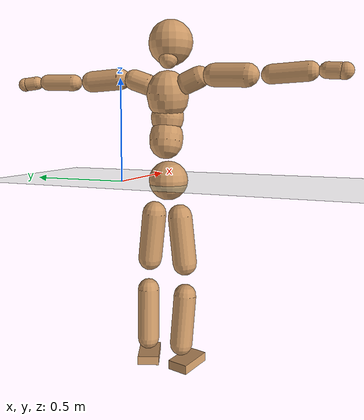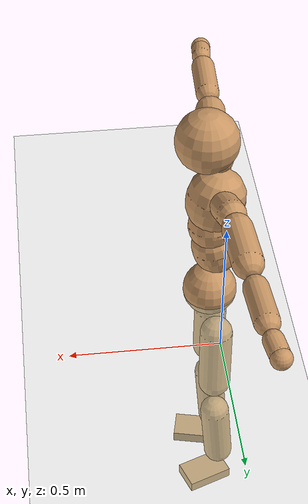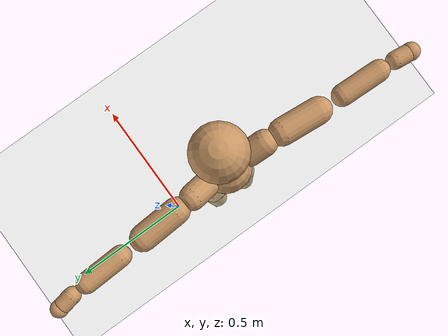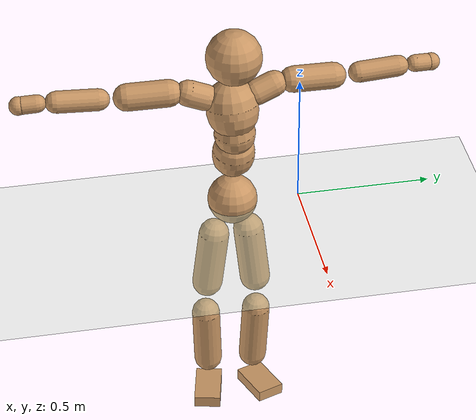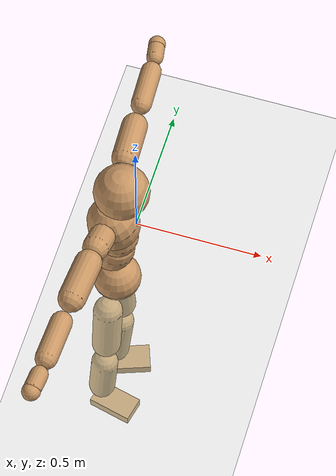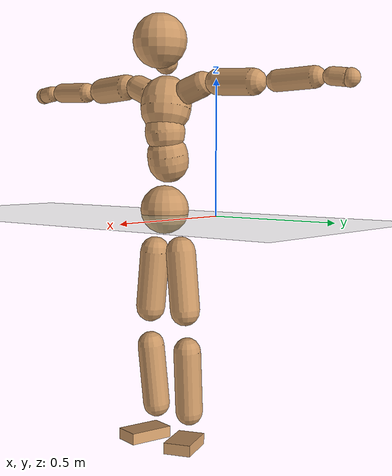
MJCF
<mujoco model="humanoid">
  <compiler coordinate="local" angle="radian"/>
  <default>
    <joint damping="0.0" armature="0.01" stiffness="0.0" limited="true"/>
    <geom conaffinity="1" condim="3" contype="7" margin="0.001" rgba="0.8 0.6 .4 1"/>
  </default>
  <asset>
    <texture type="skybox" builtin="gradient" rgb1=".4 .5 .6" rgb2="0 0 0" width="100" height="100"/>
    <texture builtin="flat" height="1278" mark="cross" markrgb="1 1 1" name="texgeom" random="0.01" rgb1="0.8 0.6 0.4" rgb2="0.8 0.6 0.4" type="cube" width="127"/>
    <texture builtin="checker" height="100" name="texplane" rgb1="0 0 0" rgb2="0.8 0.8 0.8" type="2d" width="100"/>
    <material name="MatPlane" reflectance="0.5" shininess="1" specular="1" texrepeat="60 60" texture="texplane"/>
    <material name="geom" texture="texgeom" texuniform="true"/>
  </asset>
  <worldbody>
    <light cutoff="100" diffuse="1 1 1" dir="-0 0 -1.3" directional="true" exponent="1" pos="0 0 1.3" specular=".1 .1 .1"/>
    <geom conaffinity="1" condim="3" name="floor" pos="0 0 0" rgba="0.8 0.9 0.8 1" size="100 100 .2" type="plane" material="MatPlane"/>
    <body name="Pelvis" pos="0.0007 -0.2501 0.0159">
      <freejoint name="Pelvis"/>
      <geom type="sphere" contype="1" conaffinity="1" density="500" size="0.0933" pos="0.0000 0.0000 0.0000" name="Pelvis"/>
      <body name="L_Hip" pos="-0.0207 0.0564 -0.0831">
        <joint name="L_Hip_x" type="hinge" pos="0 0 0" axis="1 0 0" stiffness="800" damping="80" armature="0.02" range="-180.0000 180.0000"/>
        <joint name="L_Hip_y" type="hinge" pos="0 0 0" axis="0 1 0" stiffness="800" damping="80" armature="0.02" range="-180.0000 180.0000"/>
        <joint name="L_Hip_z" type="hinge" pos="0 0 0" axis="0 0 1" stiffness="800" damping="80" armature="0.02" range="-180.0000 180.0000"/>
        <geom type="capsule" contype="1" conaffinity="1" density="500" fromto="0.0013 0.0084 -0.0761 0.0050 0.0337 -0.3042" size="0.0574" name="L_Hip"/>
        <body name="L_Knee" pos="0.0063 0.0422 -0.3803">
          <joint name="L_Knee_x" type="hinge" pos="0 0 0" axis="1 0 0" stiffness="800" damping="80" armature="0.02" range="-180.0000 180.0000"/>
          <joint name="L_Knee_y" type="hinge" pos="0 0 0" axis="0 1 0" stiffness="800" damping="80" armature="0.02" range="-180.0000 180.0000"/>
          <joint name="L_Knee_z" type="hinge" pos="0 0 0" axis="0 0 1" stiffness="800" damping="80" armature="0.02" range="-180.0000 180.0000"/>
          <geom type="capsule" contype="1" conaffinity="1" density="500" fromto="-0.0073 -0.0027 -0.0811 -0.0293 -0.0108 -0.3244" size="0.0527" name="L_Knee"/>
          <body name="L_Ankle" pos="-0.0366 -0.0135 -0.4055">
            <joint name="L_Ankle_x" type="hinge" pos="0 0 0" axis="1 0 0" stiffness="800" damping="80" armature="0.02" range="-180.0000 180.0000"/>
            <joint name="L_Ankle_y" type="hinge" pos="0 0 0" axis="0 1 0" stiffness="800" damping="80" armature="0.02" range="-180.0000 180.0000"/>
            <joint name="L_Ankle_z" type="hinge" pos="0 0 0" axis="0 0 1" stiffness="800" damping="80" armature="0.02" range="-180.0000 180.0000"/>
            <geom type="box" contype="1" conaffinity="1" density="500" pos="0.0593 0.0218 -0.0294" size="0.0827 0.0519 0.0214" quat="0.9845 0.0000 0.0000 0.1756" name="L_Ankle"/>
            <body name="L_Toe" pos="0.1186 0.0437 -0.0587">
              <joint name="L_Toe_x" type="hinge" pos="0 0 0" axis="1 0 0" stiffness="500" damping="50" armature="0.02" range="-180.0000 180.0000"/>
              <joint name="L_Toe_y" type="hinge" pos="0 0 0" axis="0 1 0" stiffness="500" damping="50" armature="0.02" range="-180.0000 180.0000"/>
              <joint name="L_Toe_z" type="hinge" pos="0 0 0" axis="0 0 1" stiffness="500" damping="50" armature="0.02" range="-180.0000 180.0000"/>
              <geom type="box" contype="1" conaffinity="1" density="500" pos="0.0000 0.0000 0.0303" size="0.001 0.0024 0.0011" quat="0.9837 0.0000 0.0000 0.1801" name="L_Toe"/>
            </body>
          </body>
        </body>
      </body>
      <body name="R_Hip" pos="-0.0173 -0.0585 -0.0915">
        <joint name="R_Hip_x" type="hinge" pos="0 0 0" axis="1 0 0" stiffness="800" damping="80" armature="0.02" range="-180.0000 180.0000"/>
        <joint name="R_Hip_y" type="hinge" pos="0 0 0" axis="0 1 0" stiffness="800" damping="80" armature="0.02" range="-180.0000 180.0000"/>
        <joint name="R_Hip_z" type="hinge" pos="0 0 0" axis="0 0 1" stiffness="800" damping="80" armature="0.02" range="-180.0000 180.0000"/>
        <geom type="capsule" contype="1" conaffinity="1" density="500" fromto="-0.0009 -0.0088 -0.0751 -0.0035 -0.0353 -0.3003" size="0.0572" name="R_Hip"/>
        <body name="R_Knee" pos="-0.0043 -0.0441 -0.3754">
          <joint name="R_Knee_x" type="hinge" pos="0 0 0" axis="1 0 0" stiffness="800" damping="80" armature="0.02" range="-180.0000 180.0000"/>
          <joint name="R_Knee_y" type="hinge" pos="0 0 0" axis="0 1 0" stiffness="800" damping="80" armature="0.02" range="-180.0000 180.0000"/>
          <joint name="R_Knee_z" type="hinge" pos="0 0 0" axis="0 0 1" stiffness="800" damping="80" armature="0.02" range="-180.0000 180.0000"/>
          <geom type="capsule" contype="1" conaffinity="1" density="500" fromto="-0.0067 0.0036 -0.0799 -0.0269 0.0144 -0.3198" size="0.0534" name="R_Knee"/>
          <body name="R_Ankle" pos="-0.0336 0.018 -0.3997">
            <joint name="R_Ankle_x" type="hinge" pos="0 0 0" axis="1 0 0" stiffness="800" damping="80" armature="0.02" range="-180.0000 180.0000"/>
            <joint name="R_Ankle_y" type="hinge" pos="0 0 0" axis="0 1 0" stiffness="800" damping="80" armature="0.02" range="-180.0000 180.0000"/>
            <joint name="R_Ankle_z" type="hinge" pos="0 0 0" axis="0 0 1" stiffness="800" damping="80" armature="0.02" range="-180.0000 180.0000"/>
            <geom type="box" contype="1" conaffinity="1" density="500" pos="0.0637 -0.0147 -0.0310" size="0.0887 0.0499 0.022" quat="0.9936 0.0000 0.0000 -0.1131" name="R_Ankle"/>
            <body name="R_Toe" pos="0.1274 -0.0294 -0.0619">
              <joint name="R_Toe_x" type="hinge" pos="0 0 0" axis="1 0 0" stiffness="500" damping="50" armature="0.02" range="-180.0000 180.0000"/>
              <joint name="R_Toe_y" type="hinge" pos="0 0 0" axis="0 1 0" stiffness="500" damping="50" armature="0.02" range="-180.0000 180.0000"/>
              <joint name="R_Toe_z" type="hinge" pos="0 0 0" axis="0 0 1" stiffness="500" damping="50" armature="0.02" range="-180.0000 180.0000"/>
              <geom type="box" contype="1" conaffinity="1" density="500" pos="0.0000 0.0000 0.0326" size="0.001 0.0024 0.0012" quat="0.9946 0.0000 0.0000 -0.1041" name="R_Toe"/>
            </body>
          </body>
        </body>
      </body>
      <body name="Torso" pos="-0.0282 0.0041 0.125">
        <joint name="Torso_x" type="hinge" pos="0 0 0" axis="1 0 0" stiffness="1000" damping="100" armature="0.02" range="-180.0000 180.0000"/>
        <joint name="Torso_y" type="hinge" pos="0 0 0" axis="0 1 0" stiffness="1000" damping="100" armature="0.02" range="-180.0000 180.0000"/>
        <joint name="Torso_z" type="hinge" pos="0 0 0" axis="0 0 1" stiffness="1000" damping="100" armature="0.02" range="-180.0000 180.0000"/>
        <geom type="capsule" contype="1" conaffinity="1" density="500" fromto="0.0197 0.0030 0.0855 0.0131 0.0020 0.0570" size="0.0786" name="Torso"/>
        <body name="Spine" pos="0.0329 0.005 0.1426">
          <joint name="Spine_x" type="hinge" pos="0 0 0" axis="1 0 0" stiffness="1000" damping="100" armature="0.02" range="-180.0000 180.0000"/>
          <joint name="Spine_y" type="hinge" pos="0 0 0" axis="0 1 0" stiffness="1000" damping="100" armature="0.02" range="-180.0000 180.0000"/>
          <joint name="Spine_z" type="hinge" pos="0 0 0" axis="0 0 1" stiffness="1000" damping="100" armature="0.02" range="-180.0000 180.0000"/>
          <geom type="capsule" contype="1" conaffinity="1" density="500" fromto="0.0013 -0.0019 0.0347 0.0009 -0.0013 0.0232" size="0.0768" name="Spine"/>
          <body name="Chest" pos="0.0021 -0.0032 0.0579">
            <joint name="Chest_x" type="hinge" pos="0 0 0" axis="1 0 0" stiffness="1000" damping="100" armature="0.02" range="-180.0000 180.0000"/>
            <joint name="Chest_y" type="hinge" pos="0 0 0" axis="0 1 0" stiffness="1000" damping="100" armature="0.02" range="-180.0000 180.0000"/>
            <joint name="Chest_z" type="hinge" pos="0 0 0" axis="0 0 1" stiffness="1000" damping="100" armature="0.02" range="-180.0000 180.0000"/>
            <geom type="capsule" contype="1" conaffinity="1" density="500" fromto="-0.0169 -0.0055 0.0881 -0.0113 -0.0036 0.0587" size="0.097" name="Chest"/>
            <body name="Neck" pos="-0.0341 -0.0134 0.2145">
              <joint name="Neck_x" type="hinge" pos="0 0 0" axis="1 0 0" stiffness="500" damping="50" armature="0.02" range="-180.0000 180.0000"/>
              <joint name="Neck_y" type="hinge" pos="0 0 0" axis="0 1 0" stiffness="500" damping="50" armature="0.02" range="-180.0000 180.0000"/>
              <joint name="Neck_z" type="hinge" pos="0 0 0" axis="0 0 1" stiffness="500" damping="50" armature="0.02" range="-180.0000 180.0000"/>
              <geom type="capsule" contype="1" conaffinity="1" density="500" fromto="0.0109 0.0017 0.0195 0.0436 0.0066 0.0780" size="0.0443" name="Neck"/>
              <body name="Head" pos="0.0544 0.0083 0.0975">
                <joint name="Head_x" type="hinge" pos="0 0 0" axis="1 0 0" stiffness="500" damping="50" armature="0.02" range="-180.0000 180.0000"/>
                <joint name="Head_y" type="hinge" pos="0 0 0" axis="0 1 0" stiffness="500" damping="50" armature="0.02" range="-180.0000 180.0000"/>
                <joint name="Head_z" type="hinge" pos="0 0 0" axis="0 0 1" stiffness="500" damping="50" armature="0.02" range="-180.0000 180.0000"/>
                <geom type="sphere" contype="1" conaffinity="1" density="500" size="0.1036" pos="0.0000 0.0000 0.0000" name="Head"/>
              </body>
            </body>
            <body name="L_Thorax" pos="-0.0244 0.0647 0.1125">
              <joint name="L_Thorax_x" type="hinge" pos="0 0 0" axis="1 0 0" stiffness="500" damping="50" armature="0.02" range="-180.0000 180.0000"/>
              <joint name="L_Thorax_y" type="hinge" pos="0 0 0" axis="0 1 0" stiffness="500" damping="50" armature="0.02" range="-180.0000 180.0000"/>
              <joint name="L_Thorax_z" type="hinge" pos="0 0 0" axis="0 0 1" stiffness="500" damping="50" armature="0.02" range="-180.0000 180.0000"/>
              <geom type="capsule" contype="1" conaffinity="1" density="500" fromto="-0.0032 0.0224 0.0081 -0.0127 0.0897 0.0325" size="0.0484" name="L_Thorax"/>
              <body name="L_Shoulder" pos="-0.0159 0.1121 0.0406">
                <joint name="L_Shoulder_x" type="hinge" pos="0 0 0" axis="1 0 0" stiffness="500" damping="50" armature="0.02" range="-720.0000 720.0000"/>
                <joint name="L_Shoulder_y" type="hinge" pos="0 0 0" axis="0 1 0" stiffness="500" damping="50" armature="0.02" range="-720.0000 720.0000"/>
                <joint name="L_Shoulder_z" type="hinge" pos="0 0 0" axis="0 0 1" stiffness="500" damping="50" armature="0.02" range="-720.0000 720.0000"/>
                <geom type="capsule" contype="1" conaffinity="1" density="500" fromto="-0.0028 0.0499 -0.0025 -0.0114 0.1997 -0.0101" size="0.0494" name="L_Shoulder"/>
                <body name="L_Elbow" pos="-0.0142 0.2497 -0.0127">
                  <joint name="L_Elbow_x" type="hinge" pos="0 0 0" axis="1 0 0" stiffness="500" damping="50" armature="0.02" range="-720.0000 720.0000"/>
                  <joint name="L_Elbow_y" type="hinge" pos="0 0 0" axis="0 1 0" stiffness="500" damping="50" armature="0.02" range="-720.0000 720.0000"/>
                  <joint name="L_Elbow_z" type="hinge" pos="0 0 0" axis="0 0 1" stiffness="500" damping="50" armature="0.02" range="-720.0000 720.0000"/>
                  <geom type="capsule" contype="1" conaffinity="1" density="500" fromto="-0.0022 0.0494 0.0016 -0.0089 0.1975 0.0065" size="0.0393" name="L_Elbow"/>
                  <body name="L_Wrist" pos="-0.0111 0.2469 0.0082">
                    <joint name="L_Wrist_x" type="hinge" pos="0 0 0" axis="1 0 0" stiffness="300" damping="30" armature="0.02" range="-180.0000 180.0000"/>
                    <joint name="L_Wrist_y" type="hinge" pos="0 0 0" axis="0 1 0" stiffness="300" damping="30" armature="0.02" range="-180.0000 180.0000"/>
                    <joint name="L_Wrist_z" type="hinge" pos="0 0 0" axis="0 0 1" stiffness="300" damping="30" armature="0.02" range="-180.0000 180.0000"/>
                    <geom type="capsule" contype="1" conaffinity="1" density="500" fromto="-0.0029 0.0160 -0.0019 -0.0115 0.0642 -0.0077" size="0.0319" name="L_Wrist"/>
                    <body name="L_Hand" pos="-0.0143 0.0802 -0.0096">
                      <joint name="L_Hand_x" type="hinge" pos="0 0 0" axis="1 0 0" stiffness="300" damping="30" armature="0.02" range="-180.0000 180.0000"/>
                      <joint name="L_Hand_y" type="hinge" pos="0 0 0" axis="0 1 0" stiffness="300" damping="30" armature="0.02" range="-180.0000 180.0000"/>
                      <joint name="L_Hand_z" type="hinge" pos="0 0 0" axis="0 0 1" stiffness="300" damping="30" armature="0.02" range="-180.0000 180.0000"/>
                      <geom type="sphere" contype="1" conaffinity="1" density="500" size="0.0331" pos="0.0000 0.0000 0.0000" name="L_Hand"/>
                    </body>
                  </body>
                </body>
              </body>
            </body>
            <body name="R_Thorax" pos="-0.0261 -0.0786 0.1132">
              <joint name="R_Thorax_x" type="hinge" pos="0 0 0" axis="1 0 0" stiffness="500" damping="50" armature="0.02" range="-180.0000 180.0000"/>
              <joint name="R_Thorax_y" type="hinge" pos="0 0 0" axis="0 1 0" stiffness="500" damping="50" armature="0.02" range="-180.0000 180.0000"/>
              <joint name="R_Thorax_z" type="hinge" pos="0 0 0" axis="0 0 1" stiffness="500" damping="50" armature="0.02" range="-180.0000 180.0000"/>
              <geom type="capsule" contype="1" conaffinity="1" density="500" fromto="-0.0011 -0.0211 0.0083 -0.0043 -0.0843 0.0334" size="0.0493" name="R_Thorax"/>
              <body name="R_Shoulder" pos="-0.0054 -0.1054 0.0417">
                <joint name="R_Shoulder_x" type="hinge" pos="0 0 0" axis="1 0 0" stiffness="500" damping="50" armature="0.02" range="-720.0000 720.0000"/>
                <joint name="R_Shoulder_y" type="hinge" pos="0 0 0" axis="0 1 0" stiffness="500" damping="50" armature="0.02" range="-720.0000 720.0000"/>
                <joint name="R_Shoulder_z" type="hinge" pos="0 0 0" axis="0 0 1" stiffness="500" damping="50" armature="0.02" range="-720.0000 720.0000"/>
                <geom type="capsule" contype="1" conaffinity="1" density="500" fromto="-0.0044 -0.0503 -0.0026 -0.0175 -0.2010 -0.0103" size="0.0512" name="R_Shoulder"/>
                <body name="R_Elbow" pos="-0.0219 -0.2513 -0.0129">
                  <joint name="R_Elbow_x" type="hinge" pos="0 0 0" axis="1 0 0" stiffness="500" damping="50" armature="0.02" range="-720.0000 720.0000"/>
                  <joint name="R_Elbow_y" type="hinge" pos="0 0 0" axis="0 1 0" stiffness="500" damping="50" armature="0.02" range="-720.0000 720.0000"/>
                  <joint name="R_Elbow_z" type="hinge" pos="0 0 0" axis="0 0 1" stiffness="500" damping="50" armature="0.02" range="-720.0000 720.0000"/>
                  <geom type="capsule" contype="1" conaffinity="1" density="500" fromto="-0.0017 -0.0514 0.0018 -0.0069 -0.2055 0.0070" size="0.0409" name="R_Elbow"/>
                  <body name="R_Wrist" pos="-0.0087 -0.2569 0.0088">
                    <joint name="R_Wrist_x" type="hinge" pos="0 0 0" axis="1 0 0" stiffness="300" damping="30" armature="0.02" range="-180.0000 180.0000"/>
                    <joint name="R_Wrist_y" type="hinge" pos="0 0 0" axis="0 1 0" stiffness="300" damping="30" armature="0.02" range="-180.0000 180.0000"/>
                    <joint name="R_Wrist_z" type="hinge" pos="0 0 0" axis="0 0 1" stiffness="300" damping="30" armature="0.02" range="-180.0000 180.0000"/>
                    <geom type="capsule" contype="1" conaffinity="1" density="500" fromto="-0.0018 -0.0168 -0.0016 -0.0074 -0.0674 -0.0063" size="0.0333" name="R_Wrist"/>
                    <body name="R_Hand" pos="-0.0092 -0.0842 -0.0079">
                      <joint name="R_Hand_x" type="hinge" pos="0 0 0" axis="1 0 0" stiffness="300" damping="30" armature="0.02" range="-180.0000 180.0000"/>
                      <joint name="R_Hand_y" type="hinge" pos="0 0 0" axis="0 1 0" stiffness="300" damping="30" armature="0.02" range="-180.0000 180.0000"/>
                      <joint name="R_Hand_z" type="hinge" pos="0 0 0" axis="0 0 1" stiffness="300" damping="30" armature="0.02" range="-180.0000 180.0000"/>
                      <geom type="sphere" contype="1" conaffinity="1" density="500" size="0.0344" pos="0.0000 0.0000 0.0000" name="R_Hand"/>
                    </body>
                  </body>
                </body>
              </body>
            </body>
          </body>
        </body>
      </body>
    </body>
  </worldbody>
  <actuator>
    <motor name="L_Hip_x" joint="L_Hip_x" gear="500"/>
    <motor name="L_Hip_y" joint="L_Hip_y" gear="500"/>
    <motor name="L_Hip_z" joint="L_Hip_z" gear="500"/>
    <motor name="L_Knee_x" joint="L_Knee_x" gear="500"/>
    <motor name="L_Knee_y" joint="L_Knee_y" gear="500"/>
    <motor name="L_Knee_z" joint="L_Knee_z" gear="500"/>
    <motor name="L_Ankle_x" joint="L_Ankle_x" gear="500"/>
    <motor name="L_Ankle_y" joint="L_Ankle_y" gear="500"/>
    <motor name="L_Ankle_z" joint="L_Ankle_z" gear="500"/>
    <motor name="L_Toe_x" joint="L_Toe_x" gear="500"/>
    <motor name="L_Toe_y" joint="L_Toe_y" gear="500"/>
    <motor name="L_Toe_z" joint="L_Toe_z" gear="500"/>
    <motor name="R_Hip_x" joint="R_Hip_x" gear="500"/>
    <motor name="R_Hip_y" joint="R_Hip_y" gear="500"/>
    <motor name="R_Hip_z" joint="R_Hip_z" gear="500"/>
    <motor name="R_Knee_x" joint="R_Knee_x" gear="500"/>
    <motor name="R_Knee_y" joint="R_Knee_y" gear="500"/>
    <motor name="R_Knee_z" joint="R_Knee_z" gear="500"/>
    <motor name="R_Ankle_x" joint="R_Ankle_x" gear="500"/>
    <motor name="R_Ankle_y" joint="R_Ankle_y" gear="500"/>
    <motor name="R_Ankle_z" joint="R_Ankle_z" gear="500"/>
    <motor name="R_Toe_x" joint="R_Toe_x" gear="500"/>
    <motor name="R_Toe_y" joint="R_Toe_y" gear="500"/>
    <motor name="R_Toe_z" joint="R_Toe_z" gear="500"/>
    <motor name="Torso_x" joint="Torso_x" gear="500"/>
    <motor name="Torso_y" joint="Torso_y" gear="500"/>
    <motor name="Torso_z" joint="Torso_z" gear="500"/>
    <motor name="Spine_x" joint="Spine_x" gear="500"/>
    <motor name="Spine_y" joint="Spine_y" gear="500"/>
    <motor name="Spine_z" joint="Spine_z" gear="500"/>
    <motor name="Chest_x" joint="Chest_x" gear="500"/>
    <motor name="Chest_y" joint="Chest_y" gear="500"/>
    <motor name="Chest_z" joint="Chest_z" gear="500"/>
    <motor name="Neck_x" joint="Neck_x" gear="500"/>
    <motor name="Neck_y" joint="Neck_y" gear="500"/>
    <motor name="Neck_z" joint="Neck_z" gear="500"/>
    <motor name="Head_x" joint="Head_x" gear="500"/>
    <motor name="Head_y" joint="Head_y" gear="500"/>
    <motor name="Head_z" joint="Head_z" gear="500"/>
    <motor name="L_Thorax_x" joint="L_Thorax_x" gear="500"/>
    <motor name="L_Thorax_y" joint="L_Thorax_y" gear="500"/>
    <motor name="L_Thorax_z" joint="L_Thorax_z" gear="500"/>
    <motor name="L_Shoulder_x" joint="L_Shoulder_x" gear="500"/>
    <motor name="L_Shoulder_y" joint="L_Shoulder_y" gear="500"/>
    <motor name="L_Shoulder_z" joint="L_Shoulder_z" gear="500"/>
    <motor name="L_Elbow_x" joint="L_Elbow_x" gear="500"/>
    <motor name="L_Elbow_y" joint="L_Elbow_y" gear="500"/>
    <motor name="L_Elbow_z" joint="L_Elbow_z" gear="500"/>
    <motor name="L_Wrist_x" joint="L_Wrist_x" gear="500"/>
    <motor name="L_Wrist_y" joint="L_Wrist_y" gear="500"/>
    <motor name="L_Wrist_z" joint="L_Wrist_z" gear="500"/>
    <motor name="L_Hand_x" joint="L_Hand_x" gear="500"/>
    <motor name="L_Hand_y" joint="L_Hand_y" gear="500"/>
    <motor name="L_Hand_z" joint="L_Hand_z" gear="500"/>
    <motor name="R_Thorax_x" joint="R_Thorax_x" gear="500"/>
    <motor name="R_Thorax_y" joint="R_Thorax_y" gear="500"/>
    <motor name="R_Thorax_z" joint="R_Thorax_z" gear="500"/>
    <motor name="R_Shoulder_x" joint="R_Shoulder_x" gear="500"/>
    <motor name="R_Shoulder_y" joint="R_Shoulder_y" gear="500"/>
    <motor name="R_Shoulder_z" joint="R_Shoulder_z" gear="500"/>
    <motor name="R_Elbow_x" joint="R_Elbow_x" gear="500"/>
    <motor name="R_Elbow_y" joint="R_Elbow_y" gear="500"/>
    <motor name="R_Elbow_z" joint="R_Elbow_z" gear="500"/>
    <motor name="R_Wrist_x" joint="R_Wrist_x" gear="500"/>
    <motor name="R_Wrist_y" joint="R_Wrist_y" gear="500"/>
    <motor name="R_Wrist_z" joint="R_Wrist_z" gear="500"/>
    <motor name="R_Hand_x" joint="R_Hand_x" gear="500"/>
    <motor name="R_Hand_y" joint="R_Hand_y" gear="500"/>
    <motor name="R_Hand_z" joint="R_Hand_z" gear="500"/>
  </actuator>
  <contact>
    <exclude body1="Torso" body2="Chest"/>
    <exclude body1="Head" body2="Chest"/>
    <exclude body1="R_Knee" body2="R_Toe"/>
    <exclude body1="R_Knee" body2="L_Ankle"/>
    <exclude body1="R_Knee" body2="L_Toe"/>
    <exclude body1="L_Knee" body2="L_Toe"/>
    <exclude body1="L_Knee" body2="R_Ankle"/>
    <exclude body1="L_Knee" body2="R_Toe"/>
    <exclude body1="L_Shoulder" body2="Chest"/>
    <exclude body1="R_Shoulder" body2="Chest"/>
  </contact>
  <sensor/>
  <size njmax="700" nconmax="700"/>
</mujoco>
